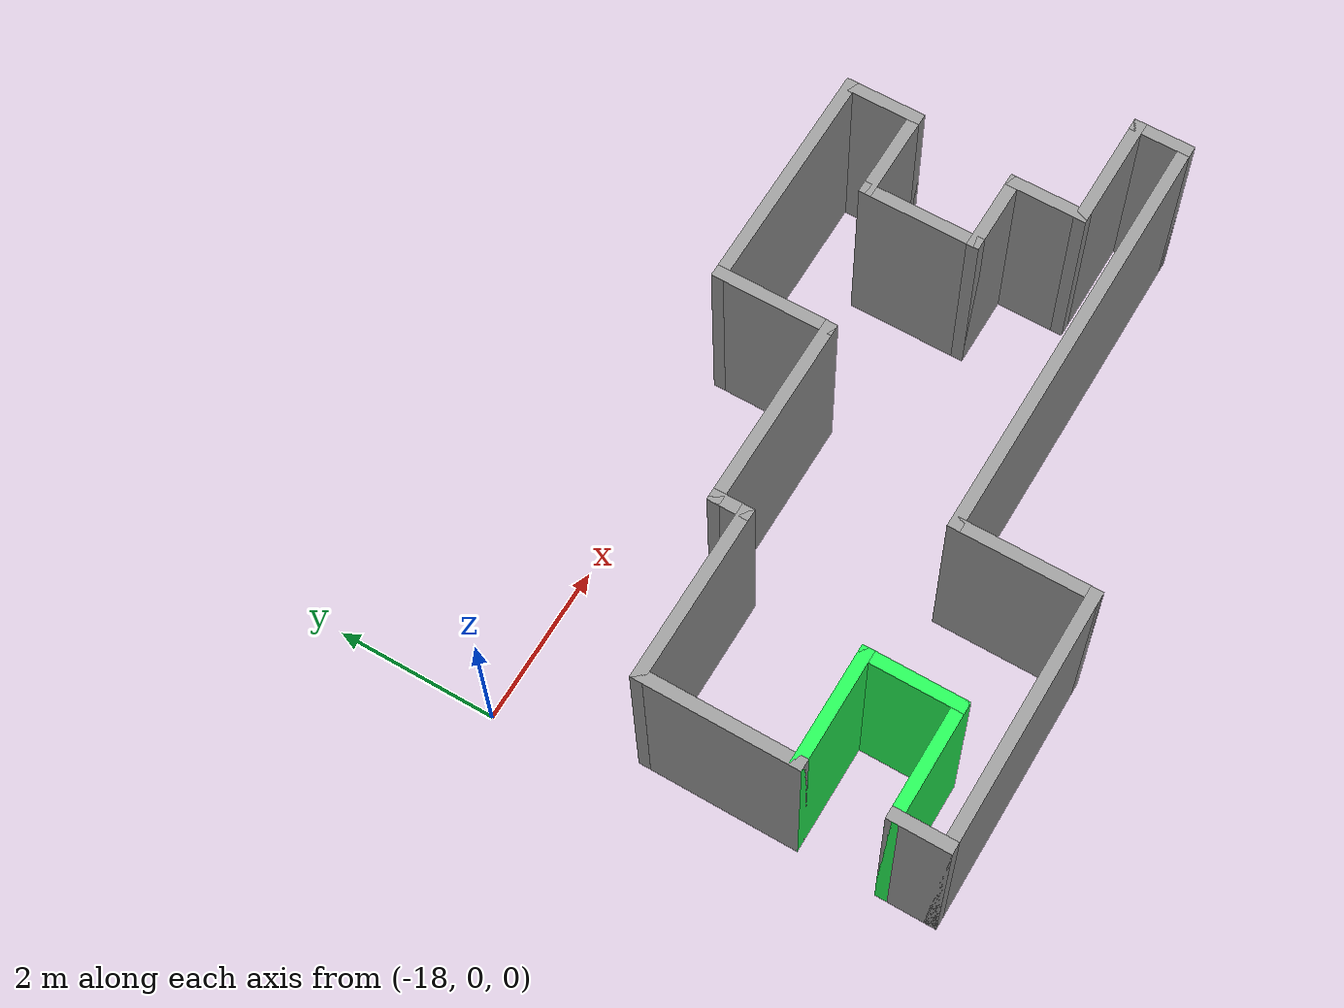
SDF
<?xml version='1.0'?>
<sdf version='1.7'>
  <model name='open_maze_1'>
    <pose>-8.81424 -2.65938 0 0 -0 0</pose>
    <link name='Wall_10'>
      <collision name='Wall_10_Collision'>
        <geometry>
          <box>
            <size>0.5 0.15 2.5</size>
          </box>
        </geometry>
        <pose>0 0 1.25 0 -0 0</pose>
      </collision>
      <visual name='Wall_10_Visual'>
        <pose>0 0 1.25 0 -0 0</pose>
        <geometry>
          <box>
            <size>0.5 0.15 2.5</size>
          </box>
        </geometry>
        <material>
          <script>
            <uri>file://media/materials/scripts/gazebo.material</uri>
            <name>Gazebo/Grey</name>
          </script>
          <ambient>1 1 1 1</ambient>
        </material>
        <meta>
          <layer>0</layer>
        </meta>
      </visual>
      <pose>-6.63924 1.1 0 0 -0 -1.5708</pose>
    </link>
    <link name='Wall_11'>
      <collision name='Wall_11_Collision'>
        <geometry>
          <box>
            <size>2.25 0.15 2.5</size>
          </box>
        </geometry>
        <pose>0 0 1.25 0 -0 0</pose>
      </collision>
      <visual name='Wall_11_Visual'>
        <pose>0 0 1.25 0 -0 0</pose>
        <geometry>
          <box>
            <size>2.25 0.15 2.5</size>
          </box>
        </geometry>
        <material>
          <script>
            <uri>file://media/materials/scripts/gazebo.material</uri>
            <name>Gazebo/Grey</name>
          </script>
          <ambient>1 1 1 1</ambient>
        </material>
        <meta>
          <layer>0</layer>
        </meta>
      </visual>
      <pose>-7.68924 0.925 0 0 -0 3.14159</pose>
    </link>
    <link name='Wall_20'>
      <collision name='Wall_20_Collision'>
        <geometry>
          <box>
            <size>2 0.15 2.5</size>
          </box>
        </geometry>
        <pose>0 0 1.25 0 -0 0</pose>
      </collision>
      <visual name='Wall_20_Visual'>
        <pose>0 0 1.25 0 -0 0</pose>
        <geometry>
          <box>
            <size>2 0.15 2.5</size>
          </box>
        </geometry>
        <material>
          <script>
            <uri>file://media/materials/scripts/gazebo.material</uri>
            <name>Gazebo/Grey</name>
          </script>
          <ambient>1 1 1 1</ambient>
        </material>
        <meta>
          <layer>0</layer>
        </meta>
      </visual>
      <pose>-8.73924 -0 0 0 -0 -1.5708</pose>
    </link>
    <link name='Wall_21'>
      <collision name='Wall_21_Collision'>
        <geometry>
          <box>
            <size>1.5 0.15 2.5</size>
          </box>
        </geometry>
        <pose>0 0 1.25 0 -0 0</pose>
      </collision>
      <visual name='Wall_21_Visual'>
        <pose>0 0 1.25 0 -0 0</pose>
        <geometry>
          <box>
            <size>1.5 0.15 2.5</size>
          </box>
        </geometry>
        <material>
          <script>
            <uri>file://media/materials/scripts/gazebo.material</uri>
            <name>Gazebo/Grey</name>
          </script>
          <ambient>0.145098 0.976471 0.337255 1</ambient>
        </material>
        <meta>
          <layer>0</layer>
        </meta>
      </visual>
      <pose>-8.06424 -0.925 0 0 -0 0</pose>
    </link>
    <link name='Wall_22'>
      <collision name='Wall_22_Collision'>
        <geometry>
          <box>
            <size>1.25 0.15 2.5</size>
          </box>
        </geometry>
        <pose>0 0 1.25 0 -0 0</pose>
      </collision>
      <visual name='Wall_22_Visual'>
        <pose>0 0 1.25 0 -0 0</pose>
        <geometry>
          <box>
            <size>1.25 0.15 2.5</size>
          </box>
        </geometry>
        <material>
          <script>
            <uri>file://media/materials/scripts/gazebo.material</uri>
            <name>Gazebo/Grey</name>
          </script>
          <ambient>0.145098 0.976471 0.337255 1</ambient>
        </material>
        <meta>
          <layer>0</layer>
        </meta>
      </visual>
      <pose>-7.38924 -1.475 0 0 -0 -1.5708</pose>
    </link>
    <link name='Wall_23'>
      <collision name='Wall_23_Collision'>
        <geometry>
          <box>
            <size>1.5 0.15 2.5</size>
          </box>
        </geometry>
        <pose>0 0 1.25 0 -0 0</pose>
      </collision>
      <visual name='Wall_23_Visual'>
        <pose>0 0 1.25 0 -0 0</pose>
        <geometry>
          <box>
            <size>1.5 0.15 2.5</size>
          </box>
        </geometry>
        <material>
          <script>
            <uri>file://media/materials/scripts/gazebo.material</uri>
            <name>Gazebo/Grey</name>
          </script>
          <ambient>0.145098 0.976471 0.337255 1</ambient>
        </material>
        <meta>
          <layer>0</layer>
        </meta>
      </visual>
      <pose>-8.06424 -2.025 0 0 -0 3.14159</pose>
    </link>
    <link name='Wall_24'>
      <collision name='Wall_24_Collision'>
        <geometry>
          <box>
            <size>0.75 0.15 2.5</size>
          </box>
        </geometry>
        <pose>0 0 1.25 0 -0 0</pose>
      </collision>
      <visual name='Wall_24_Visual'>
        <pose>0 0 1.25 0 -0 0</pose>
        <geometry>
          <box>
            <size>0.75 0.15 2.5</size>
          </box>
        </geometry>
        <material>
          <script>
            <uri>file://media/materials/scripts/gazebo.material</uri>
            <name>Gazebo/Grey</name>
          </script>
          <ambient>1 1 1 1</ambient>
        </material>
        <meta>
          <layer>0</layer>
        </meta>
      </visual>
      <pose>-8.73924 -2.325 0 0 -0 -1.5708</pose>
    </link>
    <link name='Wall_25'>
      <collision name='Wall_25_Collision'>
        <geometry>
          <box>
            <size>3.25 0.15 2.5</size>
          </box>
        </geometry>
        <pose>0 0 1.25 0 -0 0</pose>
      </collision>
      <visual name='Wall_25_Visual'>
        <pose>0 0 1.25 0 -0 0</pose>
        <geometry>
          <box>
            <size>3.25 0.15 2.5</size>
          </box>
        </geometry>
        <material>
          <script>
            <uri>file://media/materials/scripts/gazebo.material</uri>
            <name>Gazebo/Grey</name>
          </script>
          <ambient>1 1 1 1</ambient>
        </material>
        <meta>
          <layer>0</layer>
        </meta>
      </visual>
      <pose>-7.18924 -2.625 0 0 -0 0</pose>
    </link>
    <link name='Wall_26'>
      <collision name='Wall_26_Collision'>
        <geometry>
          <box>
            <size>1.75 0.15 2.5</size>
          </box>
        </geometry>
        <pose>0 0 1.25 0 -0 0</pose>
      </collision>
      <visual name='Wall_26_Visual'>
        <pose>0 0 1.25 0 -0 0</pose>
        <geometry>
          <box>
            <size>1.75 0.15 2.5</size>
          </box>
        </geometry>
        <material>
          <script>
            <uri>file://media/materials/scripts/gazebo.material</uri>
            <name>Gazebo/Grey</name>
          </script>
          <ambient>1 1 1 1</ambient>
        </material>
        <meta>
          <layer>0</layer>
        </meta>
      </visual>
      <pose>-5.63924 -1.825 0 0 -0 1.5708</pose>
    </link>
    <link name='Wall_27'>
      <collision name='Wall_27_Collision'>
        <geometry>
          <box>
            <size>5.5 0.15 2.5</size>
          </box>
        </geometry>
        <pose>0 0 1.25 0 -0 0</pose>
      </collision>
      <visual name='Wall_27_Visual'>
        <pose>0 0 1.25 0 -0 0</pose>
        <geometry>
          <box>
            <size>5.5 0.15 2.5</size>
          </box>
        </geometry>
        <material>
          <script>
            <uri>file://media/materials/scripts/gazebo.material</uri>
            <name>Gazebo/Grey</name>
          </script>
          <ambient>1 1 1 1</ambient>
        </material>
        <meta>
          <layer>0</layer>
        </meta>
      </visual>
      <pose>-2.96424 -1.025 0 0 -0 0</pose>
    </link>
    <link name='Wall_28'>
      <collision name='Wall_28_Collision'>
        <geometry>
          <box>
            <size>0.75 0.15 2.5</size>
          </box>
        </geometry>
        <pose>0 0 1.25 0 -0 0</pose>
      </collision>
      <visual name='Wall_28_Visual'>
        <pose>0 0 1.25 0 -0 0</pose>
        <geometry>
          <box>
            <size>0.75 0.15 2.5</size>
          </box>
        </geometry>
        <material>
          <script>
            <uri>file://media/materials/scripts/gazebo.material</uri>
            <name>Gazebo/Grey</name>
          </script>
          <ambient>1 1 1 1</ambient>
        </material>
        <meta>
          <layer>0</layer>
        </meta>
      </visual>
      <pose>-0.28924 -0.725 0 0 -0 1.5708</pose>
    </link>
    <link name='Wall_29'>
      <collision name='Wall_29_Collision'>
        <geometry>
          <box>
            <size>1.5 0.15 2.5</size>
          </box>
        </geometry>
        <pose>0 0 1.25 0 -0 0</pose>
      </collision>
      <visual name='Wall_29_Visual'>
        <pose>0 0 1.25 0 -0 0</pose>
        <geometry>
          <box>
            <size>1.5 0.15 2.5</size>
          </box>
        </geometry>
        <material>
          <script>
            <uri>file://media/materials/scripts/gazebo.material</uri>
            <name>Gazebo/Grey</name>
          </script>
          <ambient>1 1 1 1</ambient>
        </material>
        <meta>
          <layer>0</layer>
        </meta>
      </visual>
      <pose>-0.96424 -0.425 0 0 -0 3.14159</pose>
    </link>
    <link name='Wall_30'>
      <collision name='Wall_30_Collision'>
        <geometry>
          <box>
            <size>1 0.15 2.5</size>
          </box>
        </geometry>
        <pose>0 0 1.25 0 -0 0</pose>
      </collision>
      <visual name='Wall_30_Visual'>
        <pose>0 0 1.25 0 -0 0</pose>
        <geometry>
          <box>
            <size>1 0.15 2.5</size>
          </box>
        </geometry>
        <material>
          <script>
            <uri>file://media/materials/scripts/gazebo.material</uri>
            <name>Gazebo/Grey</name>
          </script>
          <ambient>1 1 1 1</ambient>
        </material>
        <meta>
          <layer>0</layer>
        </meta>
      </visual>
      <pose>-1.63924 -0 0 0 -0 1.5708</pose>
    </link>
    <link name='Wall_32'>
      <collision name='Wall_32_Collision'>
        <geometry>
          <box>
            <size>1.05 0.15 2.5</size>
          </box>
        </geometry>
        <pose>0 0 1.25 0 -0 0</pose>
      </collision>
      <visual name='Wall_32_Visual'>
        <pose>0 0 1.25 0 -0 0</pose>
        <geometry>
          <box>
            <size>1.05 0.15 2.5</size>
          </box>
        </geometry>
        <material>
          <script>
            <uri>file://media/materials/scripts/gazebo.material</uri>
            <name>Gazebo/Grey</name>
          </script>
          <ambient>1 1 1 1</ambient>
        </material>
        <meta>
          <layer>0</layer>
        </meta>
      </visual>
      <pose>-2.08924 0.425 0 0 -0 0</pose>
    </link>
    <link name='Wall_4'>
      <collision name='Wall_4_Collision'>
        <geometry>
          <box>
            <size>1.5 0.15 2.5</size>
          </box>
        </geometry>
        <pose>0 0 1.25 0 -0 0</pose>
      </collision>
      <visual name='Wall_4_Visual'>
        <pose>0 0 1.25 0 -0 0</pose>
        <geometry>
          <box>
            <size>1.5 0.15 2.5</size>
          </box>
        </geometry>
        <material>
          <script>
            <uri>file://media/materials/scripts/gazebo.material</uri>
            <name>Gazebo/Grey</name>
          </script>
          <ambient>1 1 1 1</ambient>
        </material>
        <meta>
          <layer>0</layer>
        </meta>
      </visual>
      <pose>-2.53924 1.1 0 0 -0 1.5708</pose>
    </link>
    <link name='Wall_5'>
      <collision name='Wall_5_Collision'>
        <geometry>
          <box>
            <size>1.25 0.15 2.5</size>
          </box>
        </geometry>
        <pose>0 0 1.25 0 -0 0</pose>
      </collision>
      <visual name='Wall_5_Visual'>
        <pose>0 0 1.25 0 -0 0</pose>
        <geometry>
          <box>
            <size>1.25 0.15 2.5</size>
          </box>
        </geometry>
        <material>
          <script>
            <uri>file://media/materials/scripts/gazebo.material</uri>
            <name>Gazebo/Grey</name>
          </script>
          <ambient>1 1 1 1</ambient>
        </material>
        <meta>
          <layer>0</layer>
        </meta>
      </visual>
      <pose>-1.98924 1.775 0 0 -0 0</pose>
    </link>
    <link name='Wall_6'>
      <collision name='Wall_6_Collision'>
        <geometry>
          <box>
            <size>1 0.15 2.5</size>
          </box>
        </geometry>
        <pose>0 0 1.25 0 -0 0</pose>
      </collision>
      <visual name='Wall_6_Visual'>
        <pose>0 0 1.25 0 -0 0</pose>
        <geometry>
          <box>
            <size>1 0.15 2.5</size>
          </box>
        </geometry>
        <material>
          <script>
            <uri>file://media/materials/scripts/gazebo.material</uri>
            <name>Gazebo/Grey</name>
          </script>
          <ambient>1 1 1 1</ambient>
        </material>
        <meta>
          <layer>0</layer>
        </meta>
      </visual>
      <pose>-1.43924 2.2 0 0 -0 1.5708</pose>
    </link>
    <link name='Wall_7'>
      <collision name='Wall_7_Collision'>
        <geometry>
          <box>
            <size>3 0.15 2.5</size>
          </box>
        </geometry>
        <pose>0 0 1.25 0 -0 0</pose>
      </collision>
      <visual name='Wall_7_Visual'>
        <pose>0 0 1.25 0 -0 0</pose>
        <geometry>
          <box>
            <size>3 0.15 2.5</size>
          </box>
        </geometry>
        <material>
          <script>
            <uri>file://media/materials/scripts/gazebo.material</uri>
            <name>Gazebo/Grey</name>
          </script>
          <ambient>1 1 1 1</ambient>
        </material>
        <meta>
          <layer>0</layer>
        </meta>
      </visual>
      <pose>-2.86424 2.625 0 0 -0 3.14159</pose>
    </link>
    <link name='Wall_8'>
      <collision name='Wall_8_Collision'>
        <geometry>
          <box>
            <size>1.5 0.15 2.5</size>
          </box>
        </geometry>
        <pose>0 0 1.25 0 -0 0</pose>
      </collision>
      <visual name='Wall_8_Visual'>
        <pose>0 0 1.25 0 -0 0</pose>
        <geometry>
          <box>
            <size>1.5 0.15 2.5</size>
          </box>
        </geometry>
        <material>
          <script>
            <uri>file://media/materials/scripts/gazebo.material</uri>
            <name>Gazebo/Grey</name>
          </script>
          <ambient>1 1 1 1</ambient>
        </material>
        <meta>
          <layer>0</layer>
        </meta>
      </visual>
      <pose>-4.28924 1.95 0 0 -0 -1.5708</pose>
    </link>
    <link name='Wall_9'>
      <collision name='Wall_9_Collision'>
        <geometry>
          <box>
            <size>2.5 0.15 2.5</size>
          </box>
        </geometry>
        <pose>0 0 1.25 0 -0 0</pose>
      </collision>
      <visual name='Wall_9_Visual'>
        <pose>0 0 1.25 0 -0 0</pose>
        <geometry>
          <box>
            <size>2.5 0.15 2.5</size>
          </box>
        </geometry>
        <material>
          <script>
            <uri>file://media/materials/scripts/gazebo.material</uri>
            <name>Gazebo/Grey</name>
          </script>
          <ambient>1 1 1 1</ambient>
        </material>
        <meta>
          <layer>0</layer>
        </meta>
      </visual>
      <pose>-5.46424 1.275 0 0 -0 3.14159</pose>
    </link>
    <static>1</static>
  </model>
</sdf>
